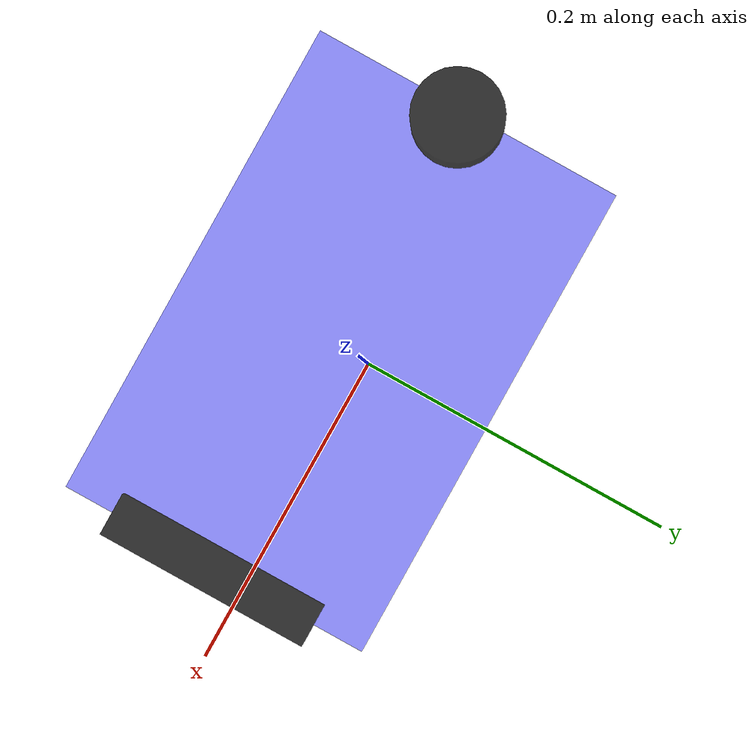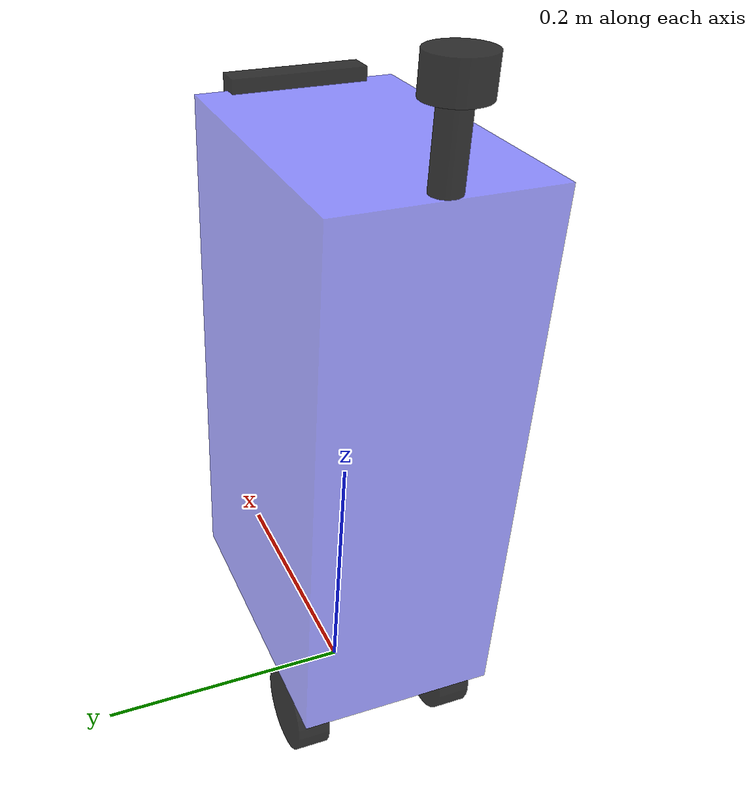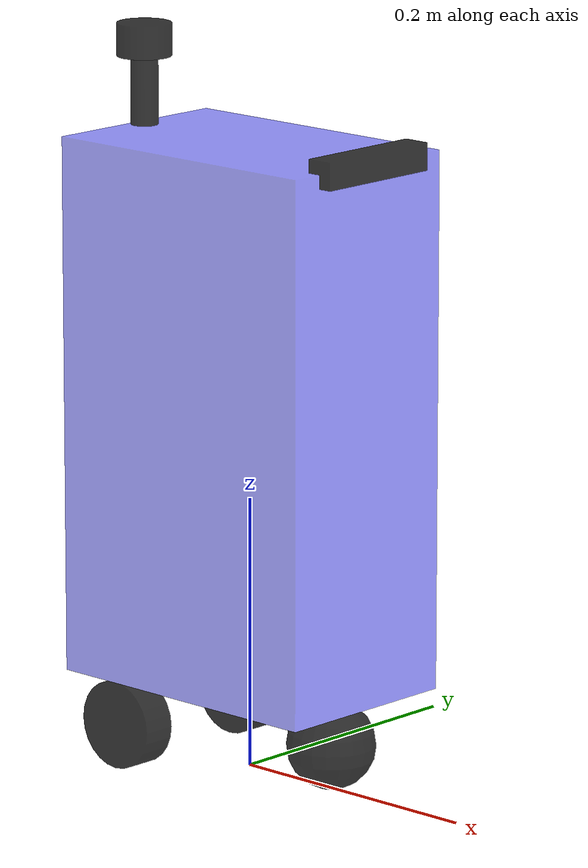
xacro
<?xml version="1.0"?>
<robot xmlns:xacro="http://www.ros.org/wiki/xacro" name="tudou">
    <xacro:include filename="$(find tudou_description)/urdf/tudou/base.urdf.xacro" />
    <!-- 传感器组件 -->
    <xacro:include filename="$(find tudou_description)/urdf/tudou/sensor/imu.urdf.xacro" />
    <xacro:include filename="$(find tudou_description)/urdf/tudou/sensor/laser.urdf.xacro" />
    <xacro:include filename="$(find tudou_description)/urdf/tudou/sensor/camera.urdf.xacro" />
     <!-- 执行器组件 -->
    <xacro:include filename="$(find tudou_description)/urdf/tudou/actor/wheel.urdf.xacro" />
    <xacro:include filename="$(find tudou_description)/urdf/tudou/actor/caster.urdf.xacro" />

    <xacro:base_xacro length="0.228" width="0.148" height="0.395" />
    <!-- 传感器 -->
    <xacro:imu_xacro xyz="0 -0.006 -0.115" />
    <xacro:laser_xacro xyz="-0.104 0 0.2225" />
    <xacro:camera_xacro xyz="0.114 0 0.1975" />
    <!-- 执行器主动轮+从动轮 -->
    <xacro:wheel_xacro wheel_name="left" xyz="-0.066 0.06 -0.230" />
    <xacro:wheel_xacro wheel_name="right" xyz="-0.066 -0.06 -0.230" />
    <xacro:caster_xacro caster_name="front" xyz="0.08 0.0 -0.230" />
    <!-- Gazebo 插件 -->
</robot>

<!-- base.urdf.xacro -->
<robot xmlns:xacro="http://www.ros.org/wiki/xacro">
   <xacro:include filename="$(find tudou_description)/urdf/tudou/common_inertia.xacro" />
    <xacro:macro name="base_xacro" params="length width height">
     <link name="base_footprint" />

        <joint name="base_joint" type="fixed">
            <parent link="base_footprint" />
            <child link="base_link" />
            <origin xyz="0.0 0.0 ${height/2.0+0.065}" rpy="0 0 0" />
        </joint>

        <link name="base_link">
            <visual>
                <origin xyz="0 0 0.0" rpy="0 0 0" />
                <geometry>
                    <box size="${length} ${width} ${height}" />
                </geometry>
                <material name="blue">
                    <color rgba="0.1 0.1 1.0 0.5"/>
                </material>
            </visual>
            <collision>
                <origin xyz="0 0 0.0" rpy="0 0 0" />
                <geometry>
                    <box size="${length} ${width} ${height}" />
                </geometry>
                <material name="blue">
                    <color rgba="0.1 0.1 1.0 0.5"/>
                </material>
            </collision>
            <xacro:box_inertia m="1.0" w="${length}" h="${width}" d="${height}"/>
        </link>

    </xacro:macro>

</robot>

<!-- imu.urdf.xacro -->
<robot xmlns:xacro="http://www.ros.org/wiki/xacro">
   <xacro:include filename="$(find tudou_description)/urdf/tudou/common_inertia.xacro" />
    <xacro:macro name="imu_xacro" params="xyz">
        <link name="imu_link">
            <visual>
                <origin xyz="0 0 00" rpy="0 0 0" />
                <geometry>
                    <box size="0.02 0.02 0.02" />
                </geometry>
                <material name="black">
                    <color rgba="0 0 0 0.8" />
                </material>
            </visual>
            <collision>
                <origin xyz="0 0 00" rpy="0 0 0" />
                <geometry>
                    <box size="0.02 0.02 0.02" />
                </geometry>
                <material name="black">
                    <color rgba="0 0 0 0.8" />
                </material>
            </collision>
            <xacro:box_inertia m="0.01" w="0.02" d="0.02" h="0.02"/>
        </link>

        <joint name="imu_joint" type="fixed">
            <parent link="base_link" />
            <child link="imu_link" />
            <origin xyz="${xyz}" />
        </joint>
    </xacro:macro>
</robot>

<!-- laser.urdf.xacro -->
<robot xmlns:xacro="http://www.ros.org/wiki/xacro">
   <xacro:include filename="$(find tudou_description)/urdf/tudou/common_inertia.xacro" />
    <xacro:macro name="laser_xacro" params="xyz">
        <gazebo reference="laser_cylinder_link">
            <material>Gazebo/Black</material>
        </gazebo>
        <gazebo reference="laser_link">
            <material>Gazebo/Black</material>
        </gazebo>

        <!-- ============雷达支撑杆================ -->
        <link name="laser_cylinder_link">
            <visual>
                <origin xyz="0 0 0" rpy="0 0 0" />
                <geometry>
                    <cylinder length="0.050" radius="0.01" />
                </geometry>
                <material name="black">
                    <color rgba="0.0 0.0 0.0 0.8" />
                </material>
            </visual>
            <collision>
                <origin xyz="0 0 0" rpy="0 0 0" />
                <geometry>
                    <cylinder length="0.050" radius="0.01" />
                </geometry>
                <material name="black">
                    <color rgba="0.0 0.0 0.0 0.8" />
                </material>
            </collision>
            <xacro:cylinder_inertia m="0.01" r="0.01" h="0.050" />
        </link>

        <joint name="laser_cylinder_joint" type="fixed">
            <parent link="base_link" />
            <child link="laser_cylinder_link" />
            <origin xyz="${xyz}" />
        </joint>
        <!-- ============雷达================ -->
        <link name="laser_link">
            <visual>
                <origin xyz="0 0 0" rpy="0 0 0" />
                <geometry>
                    <cylinder length="0.024" radius="0.02" />
                </geometry>
                <material name="black">
                    <color rgba="0.0 0.0 0.0 0.8" />
                </material>
            </visual>
            <collision>
                <origin xyz="0 0 0" rpy="0 0 0" />
                <geometry>
                    <cylinder length="0.024" radius="0.02" />
                </geometry>
                <material name="black">
                    <color rgba="0.0 0.0 0.0 0.8" />
                </material>
            </collision>
            <xacro:cylinder_inertia m="0.03" r="0.02" h="0.024" />
        </link>

        <joint name="laser_joint" type="fixed">
            <parent link="laser_cylinder_link" />
            <child link="laser_link" />
            <origin xyz="0 0 0.037" />
        </joint>

    </xacro:macro>

</robot>

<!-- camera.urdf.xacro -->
<robot xmlns:xacro="http://www.ros.org/wiki/xacro">
   <xacro:include filename="$(find tudou_description)/urdf/tudou/common_inertia.xacro" />
    <xacro:macro name="camera_xacro" params="xyz">
        <!-- ============相机模块================ -->
        <link name="camera_link">
            <visual>
                <origin xyz="0 0 0.0" rpy="0 0 0" />
                <geometry>
                    <box size="0.02 0.10 0.02" />
                </geometry>
                <material name="black">
                    <color rgba="0.0 0.0 0.0 0.8"/>
                </material>
            </visual>
            <collision>
                <origin xyz="0 0 0.0" rpy="0 0 0" />
                <geometry>
                    <box size="0.02 0.10 0.02" />
                </geometry>
                <material name="black">
                    <color rgba="0.0 0.0 0.0 0.8"/>
                </material>
            </collision>
            <xacro:box_inertia m="0.01" w="0.02" h="0.10" d="0.02" />
        </link>
        <link name="camera_optical_link"></link>
        <joint name="camera_optical_joint" type="fixed">
            <parent link="camera_link" />
            <child link="camera_optical_link" />
            <origin xyz="0 0 0" rpy="${-pi/2} 0 ${-pi/2}" />
        </joint>

        <joint name="camera_joint" type="fixed">
            <parent link="base_link" />
            <child link="camera_link" />
            <origin xyz="${xyz}" />
        </joint>
    </xacro:macro>

</robot>

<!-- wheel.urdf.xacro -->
<robot xmlns:xacro="http://www.ros.org/wiki/xacro">
   <xacro:include filename="$(find tudou_description)/urdf/tudou/common_inertia.xacro" />
    <xacro:macro name="wheel_xacro" params="wheel_name xyz">
        <link name="${wheel_name}_wheel_link">
            <visual>
                <origin xyz="0 0 0" rpy="1.57079 0 0" />
                <geometry>
                    <cylinder length="0.025" radius="0.0325" />
                </geometry>
                <material name="black">
                    <color rgba="0.0 0.0 0.0 0.8"/>
                </material>
            </visual>
            <collision>
                <origin xyz="0 0 0" rpy="1.57079 0 0" />
                <geometry>
                    <cylinder length="0.04" radius="0.032" />
                </geometry>
                <material name="black">
                    <color rgba="0.0 0.0 0.0 0.8"/>
                </material>
            </collision>
            <xacro:cylinder_inertia m="0.1" h="0.025" r="0.0325"/>
        </link>
        <gazebo reference="${wheel_name}_wheel_link">
            <mu1 value="20.0" />
            <mu2 value="20.0" />
            <kp value="1000000000.0" />
            <kd value="1.0" />
        </gazebo>

        <joint name="${wheel_name}_wheel_joint" type="continuous">
            <parent link="base_link" />
            <child link="${wheel_name}_wheel_link" />
            <origin xyz="${xyz}" />
            <axis xyz="0 1 0" />
        </joint>
    </xacro:macro>
</robot>

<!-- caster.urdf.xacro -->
<robot xmlns:xacro="http://www.ros.org/wiki/xacro">
   <xacro:include filename="$(find tudou_description)/urdf/tudou/common_inertia.xacro" />
    <xacro:macro name="caster_xacro" params="caster_name xyz">
        <link name="${caster_name}_caster_link">
            <visual>
                <origin xyz="0 0 0" rpy="0 0 0" />
                <geometry>
                    <sphere radius="0.0325" />
                </geometry>
                <material name="black">
                    <color rgba="0.0 0.0 0.0 0.8"/>
                </material>
            </visual>
            <collision>
                <origin xyz="0 0 0" rpy="0 0 0" />
                <geometry>
                    <sphere radius="0.0325" />
                </geometry>
                <material name="black">
                    <color rgba="0.0 0.0 0.0 0.8"/>
                </material>
            </collision>
            <xacro:sphere_inertia m="0.01" r="0.0325" />
        </link>
        <gazebo reference="${caster_name}_caster_link">
            <mu1 value="0.0" />
            <mu2 value="0.0" />
            <kp value="1000000000.0" />
            <kd value="1.0" />
        </gazebo>

        <joint name="${caster_name}_caster_joint" type="fixed">
            <parent link="base_link" />
            <child link="${caster_name}_caster_link" />
            <origin xyz="${xyz}" />
            <axis xyz="0 0 0" />
        </joint>

    </xacro:macro>
</robot>
